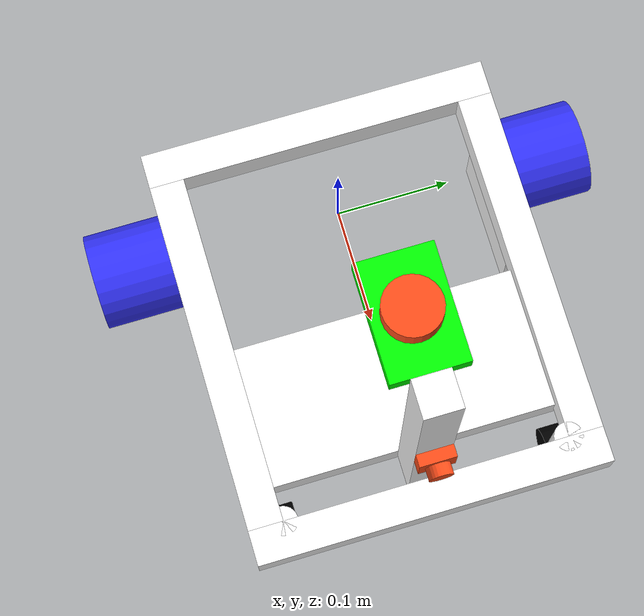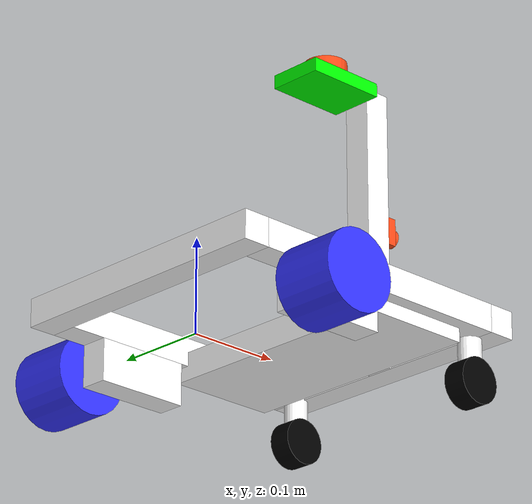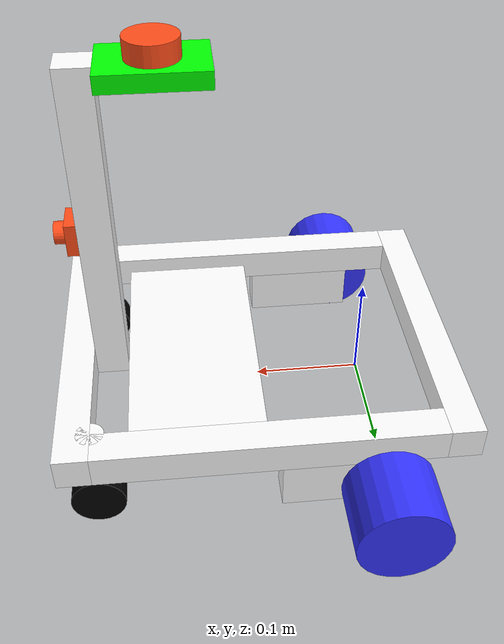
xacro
<?xml version="1.0"?>
<robot xmlns:xacro="http://www.ros.org/wiki/xacro"  name="robot">

<xacro:include filename="robot_core.xacro" />

<xacro:include filename="ros2_control.xacro" />
<xacro:include filename="lidar.xacro" />
<xacro:include filename="camera.xacro" />

</robot>

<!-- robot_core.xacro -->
<robot xmlns:xacro="http://www.ros.org/wiki/xacro"  name="robot">

    <!-- Includes -->
   <xacro:include filename="inertial_macros.xacro" />

    <!-- definition variables -->

    <xacro:property name = "length_chassis" value = "0.365"/>
    <xacro:property name = "width_chassis" value = "0.305"/>
    <xacro:property name = "size_item" value = "0.030"/>
    <xacro:property name = "hight_main_robot" value = "0.1"/>
    <xacro:property name = "diameter_rear_wheel" value = "0.083"/>
    <xacro:property name = "width_rear_wheel" value = "0.0675"/>
    <xacro:property name = "back_to_rear_axel" value = "0.08"/>
    <xacro:property name = "diameter_front_wheel" value = "0.049"/>
    <xacro:property name = "hight_sensor_tower" value = "0.305"/>

    <!-- definition colors -->
    <material name = "white">
        <color rgba = "1 1 1 1" />
    </material>

    <material name = "green">
        <color rgba = "0 1 0 1" />
    </material>

    <material name="orange">
        <color rgba = "1 0.3 0.1 1" />
    </material>

    <material name = "blue">
        <color rgba = "0.2 0.2 1 1" />
    </material>

    <material name = "black">
        <color rgba = "0 0 0 1" />
    </material>

    <!-- Base Link -->

    <link name = "base_link">

    </link>

    <!-- Chassis Link -->

    <joint name = "chassis_joint" type = "fixed">
        <parent link = "base_link"/>
        <child link = "chassis_link"/>
        <origin xyz = "${-back_to_rear_axel} 0 ${hight_main_robot-0.5*diameter_rear_wheel-size_item}"/>
    </joint>

    <link name = "chassis_link">
        <!-- ITEM Hinten -->
        <visual>
            <origin xyz = "${size_item/2} 0 ${size_item/2}"/>
            <geometry>
                <box size = "${size_item} ${width_chassis} ${size_item}"/>
            </geometry>
            <material name = "white"/>
        </visual>
       <xacro:inertial_box mass="0.25" x="${size_item}" y="${width_chassis}" z="${size_item}">
            <origin xyz="${size_item/2} 0 ${size_item/2}"  rpy="0 0 0"/>
        </xacro:inertial_box>

        <!-- ITEM Vorne -->
        <visual>
            <origin xyz = "${length_chassis-size_item/2} 0 ${size_item/2}"/>
            <geometry>
                <box size = "${size_item} ${width_chassis} ${size_item}"/>
            </geometry>
            <material name = "white"/>
        </visual>
        <xacro:inertial_box mass="0.25" x="${size_item}" y="${width_chassis}" z="${size_item}">
            <origin xyz="${length_chassis-size_item/2} 0 ${size_item/2}"  rpy="0 0 0"/>
        </xacro:inertial_box>

        <!-- ITEM Links -->
        <visual>
            <origin xyz = "${length_chassis/2} ${width_chassis/2-size_item/2} ${size_item/2}"/>
            <geometry>
                <box size = "${length_chassis-2*size_item} ${size_item} ${size_item}"/>
            </geometry>
            <material name = "white"/>
        </visual>
        <xacro:inertial_box mass="0.25" x="${length_chassis-2*size_item}" y="${size_item}" z="${size_item}">
            <origin xyz="${length_chassis/2} ${width_chassis/2-size_item/2} ${size_item/2}"  rpy="0 0 0"/>
        </xacro:inertial_box>

        <!-- ITEM Rechts -->
        <visual>
            <origin xyz = "${length_chassis/2} ${-width_chassis/2+size_item/2} ${size_item/2}"/>
            <geometry>
                <box size = "${length_chassis-2*size_item} ${size_item} ${size_item}"/>
            </geometry>
            <material name = "white"/>
        </visual>
        <xacro:inertial_box mass="0.25" x="${length_chassis-2*size_item}" y="${size_item}" z="${size_item}">
            <origin xyz="${length_chassis/2} ${-width_chassis/2+size_item/2} ${size_item/2}"  rpy="0 0 0"/>
        </xacro:inertial_box>

        <!-- Motor und Radhalterung Links -->
        <visual>
            <origin xyz = "${back_to_rear_axel+0.5*diameter_rear_wheel} ${width_chassis/2-size_item/2} ${-0.75*size_item}"/>
            <geometry>
                <box size = "${1.25*diameter_rear_wheel} ${size_item} ${1.5*size_item}"/>
            </geometry>
            <material name = "white"/>
        </visual>
        <xacro:inertial_box mass="0.3" x="${1.25*diameter_rear_wheel}" y="${size_item}" z="${1.5*size_item}">
            <origin xyz="${back_to_rear_axel+0.5*diameter_rear_wheel} ${width_chassis/2-size_item/2} ${-0.75*size_item}"  rpy="0 0 0"/>
        </xacro:inertial_box>

        <!-- Motor und Radhalterung Rechts -->
        <visual>
            <origin xyz = "${back_to_rear_axel+0.5*diameter_rear_wheel} ${-width_chassis/2+size_item/2} ${-0.75*size_item}"/>
            <geometry>
                <box size = "${1.25*diameter_rear_wheel} ${size_item} ${1.5*size_item}"/>
            </geometry>
            <material name = "white"/>
        </visual>
        <xacro:inertial_box mass="0.3" x="${1.25*diameter_rear_wheel}" y="${size_item}" z="${1.5*size_item}">
            <origin xyz="${back_to_rear_axel+0.5*diameter_rear_wheel} ${-width_chassis/2+size_item/2} ${-0.75*size_item}"  rpy="0 0 0"/>
        </xacro:inertial_box>

        <!-- Stuetzradhalterung Links -->
        <visual>
            <origin xyz = "${length_chassis-size_item} ${width_chassis/2-size_item} ${-hight_main_robot/2+diameter_front_wheel/4+size_item}"/>
            <geometry>
                <cylinder radius = "${diameter_front_wheel/4}" length = "${hight_main_robot-diameter_front_wheel/2}"/>
            </geometry>
            <material name = "white"/>
        </visual>
        <xacro:inertial_cylinder mass="0.1" length = "${hight_main_robot-diameter_front_wheel/2}" radius = "${diameter_front_wheel/4}">
            <origin xyz="${length_chassis-size_item} ${width_chassis/2-size_item} ${-hight_main_robot/2+diameter_front_wheel/4+size_item}"  rpy="0 0 0"/>
        </xacro:inertial_cylinder>

        <!-- Stuetzradhalterung Rechts -->
        <visual>
            <origin xyz = "${length_chassis-size_item} ${-width_chassis/2+size_item} ${-hight_main_robot/2+diameter_front_wheel/4+size_item}"/>
            <geometry>
                <cylinder radius = "${diameter_front_wheel/4}" length = "${hight_main_robot-diameter_front_wheel/2}"/>
            </geometry>
            <material name = "white"/>
        </visual>
        <xacro:inertial_cylinder mass="0.1" length = "${hight_main_robot-diameter_front_wheel/2}" radius = "${diameter_front_wheel/4}">
            <origin xyz="${length_chassis-size_item} ${-width_chassis/2+size_item} ${-hight_main_robot/2+diameter_front_wheel/4+size_item}"  rpy="0 0 0"/>
        </xacro:inertial_cylinder>

        <!-- Komponententraeger -->
        <visual>
            <origin xyz = "${length_chassis*2/3} 0 0"/>
            <geometry>
                <box size = "${length_chassis/3} ${width_chassis-1*size_item} ${size_item}"/>
            </geometry>
            <material name = "white"/>
        </visual>
        <xacro:inertial_box mass="0.5" x="${length_chassis/3}" y="${width_chassis-1*size_item}" z="${size_item}">
            <origin xyz="${length_chassis*2/3} 0 0"  rpy="0 0 0"/>
        </xacro:inertial_box>

        <collision>
            <origin xyz = "${length_chassis/2} 0 ${-hight_main_robot/2+size_item+diameter_front_wheel/4}"/>
            <geometry>
                <box size = "${length_chassis} ${width_chassis} ${hight_main_robot-diameter_front_wheel/2}"/>
            </geometry>
        </collision>
    </link>

    <gazebo reference = "chassis_link">
        <material>Gazebo/White</material>
    </gazebo>

    <!-- LEFT WHEEL -->

    <joint name="left_wheel_joint" type="continuous">
        <parent link="base_link"/>
        <child link="left_wheel"/>
        <origin xyz="0 ${width_chassis/2+width_rear_wheel/2} 0" rpy="-${pi/2} 0 0"/>
        <axis xyz="0 0 1"/>
    </joint>

    <link name="left_wheel">
        <visual>
            <geometry>
                <cylinder length="${width_rear_wheel}" radius="${diameter_rear_wheel/2}" />
            </geometry>
            <material name="blue"/>
        </visual>
        <xacro:inertial_cylinder mass="0.15" length="${width_rear_wheel}" radius="${diameter_rear_wheel/2}">
            <origin xyz="0 0 0" rpy="0 0 0"/>
        </xacro:inertial_cylinder>
        <collision>
            <geometry>
                <cylinder length="${width_rear_wheel}" radius="${diameter_rear_wheel/2}" />
            </geometry>
        </collision>
    </link>

    <gazebo reference = "left_wheel">
        <material>Gazebo/Blue</material>
    </gazebo>

    <!-- RIGHT WHEEL -->

    <joint name="right_wheel_joint" type="continuous">
        <parent link="base_link"/>
        <child link="right_wheel"/>
        <origin xyz="0 ${-width_chassis/2-width_rear_wheel/2} 0" rpy="${pi/2} 0 0"/>
        <axis xyz="0 0 -1"/>
    </joint>

    <link name="right_wheel">
        <visual>
            <geometry>
                <cylinder length="${width_rear_wheel}" radius="${diameter_rear_wheel/2}" />
            </geometry>
            <material name="blue"/>
        </visual>
        <xacro:inertial_cylinder mass="0.15" length="${width_rear_wheel}" radius="${diameter_rear_wheel/2}">
            <origin xyz="0 0 0" rpy="0 0 0"/>
        </xacro:inertial_cylinder>
        <collision>
            <geometry>
                <cylinder length="${width_rear_wheel}" radius="${diameter_rear_wheel/2}" />
            </geometry>
        </collision>
    </link>

    <gazebo reference = "right_wheel">
        <material>Gazebo/Blue</material>
    </gazebo>

    <!-- CASTER WHEEL -->

    <joint name="caster_wheel_joint" type="fixed">
        <parent link="chassis_link"/>
        <child link="caster_wheel"/>
        <origin xyz = "${length_chassis-size_item} 0 ${-hight_main_robot+diameter_front_wheel/2+size_item}"/>
    </joint>

    <link name="caster_wheel">
        <visual>
            <origin xyz = "0 ${-width_chassis/2+size_item} 0" rpy="${pi/2} 0 0"/>
            <geometry>
                <cylinder radius="${diameter_front_wheel/2}" length = "${diameter_front_wheel/2}"/>
            </geometry>
            <material name="black"/>
        </visual>
        <xacro:inertial_cylinder mass="0.1" length="${diameter_front_wheel/2}" radius="${diameter_front_wheel/2}">
            <origin xyz = "0 ${-width_chassis/2+size_item} 0" rpy="${pi/2} 0 0"/>
        </xacro:inertial_cylinder>
        <visual>
            <origin xyz = "0 ${width_chassis/2-size_item} 0" rpy="${pi/2} 0 0"/>
            <geometry>
                <cylinder radius="${diameter_front_wheel/2}" length = "${diameter_front_wheel/2}"/>
            </geometry>
            <material name="black"/>
        </visual>
        <xacro:inertial_cylinder mass="0.15" length="${diameter_front_wheel/2}" radius="${diameter_front_wheel/2}">
            <origin xyz = "0 ${width_chassis/2-size_item} 0" rpy="${pi/2} 0 0"/>
        </xacro:inertial_cylinder>
        <collision>
            <origin xyz = "0 ${-width_chassis/2+size_item} 0" rpy="${pi/2} 0 0"/>
            <geometry>
                <cylinder radius="${diameter_front_wheel/2}" length = "${diameter_front_wheel/2}"/>
            </geometry>
        </collision>
        <collision>
            <origin xyz = "0 ${width_chassis/2-size_item} 0" rpy="${pi/2} 0 0"/>
            <geometry>
                <cylinder radius="${diameter_front_wheel/2}" length = "${diameter_front_wheel/2}"/>
            </geometry>
        </collision>
    </link>

    <gazebo reference = "caster_wheel">
        <material>Gazebo/Black</material>
        <mu1 value="0.0001"/>
        <mu2 value="0.0001"/>
    </gazebo>

    <!-- Sensor Tower Link -->

    <joint name = "sensor_tower_joint" type = "fixed">
        <parent link = "chassis_link"/>
        <child link = "sensor_tower_link"/>
        <origin xyz = "${length_chassis-1.5*size_item} 0 ${hight_sensor_tower/2}"/>
    </joint>

    <link name = "sensor_tower_link">
        <visual>
            <geometry>
                <box size = "${size_item} ${size_item} ${hight_sensor_tower}"/>
            </geometry>
            <material name = "white"/>
        </visual>
       <xacro:inertial_box mass="0.25" x="${size_item}" y="${size_item}" z="${hight_sensor_tower}">
            <origin xyz= "0 0 0"  rpy="0 0 0"/>
        </xacro:inertial_box>

        <collision>
            <geometry>
                <box size = "${size_item} ${size_item} ${hight_sensor_tower}"/>
            </geometry>
        </collision>
    </link>

    <gazebo reference = "sensor_tower_link">
        <material>Gazebo/White</material>
    </gazebo>
</robot>

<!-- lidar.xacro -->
<robot xmlns:xacro="http://www.ros.org/wiki/xacro"  name="robot">

    <!-- Includes -->
   <xacro:include filename="inertial_macros.xacro" />

        <!-- Lidar Link -->
    <joint name = "laser_joint" type = "fixed">
        <parent link = "sensor_tower_link"/>
        <child link = "laser_link"/>
        <origin xyz = "${-2*size_item} 0 ${hight_sensor_tower/2}"/>
    </joint>

    <link name = "laser_link">
        <visual>
            <origin xyz = "0 0 ${-size_item/4}"/>
            <geometry>
                <box size = "${size_item*3} ${size_item*2} ${size_item/2}"/>
            </geometry>
            <material name = "green"/>
        </visual>
       <xacro:inertial_box mass="0.1" x="${size_item*3}" y="${size_item*2}" z="${size_item*7/6}">
            <origin xyz= "0 0 ${-size_item/12}"  rpy="0 0 0"/>
        </xacro:inertial_box>
        <visual>
            <origin xyz = "0 0 ${size_item/4}" rpy="0 0 0"/>
            <geometry>
                <cylinder radius="${size_item*0.75}" length = "${size_item*2/3}"/>
            </geometry>
            <material name = "orange"/>
        </visual>

        <collision>
            <origin xyz= "0 0 ${-size_item/12}"  rpy="0 0 0"/>
            <geometry>
                <box size = "${size_item*3} ${size_item*2} ${size_item*7/6}"/>
            </geometry>
        </collision>
    </link>

    <gazebo reference = "laser_link">
        <material>Gazebo/Green</material>
        <sensor name="laser" type="ray">
            <pose> 0 0 0 0 0 0 </pose>
            <visualize>false</visualize>
            <update_rate>10</update_rate>
            <ray>
                <scan>
                    <horizontal>
                        <samples>360</samples>
                        <min_angle>-3.14</min_angle>
                        <max_angle>3.14</max_angle>
                    </horizontal>
                </scan>
                <range>
                    <min>0.3</min>
                    <max>12</max>
                </range>
            </ray>
            <plugin name="laser_controller" filename="libgazebo_ros_ray_sensor.so">
                <ros>
                    <argument>~/out:=scan</argument>
                </ros>
                <output_type>sensor_msgs/LaserScan
                </output_type>
                <frame_name>laser_frame</frame_name>
            </plugin>
        </sensor>
    </gazebo>

</robot>

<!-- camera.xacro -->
<robot xmlns:xacro="http://www.ros.org/wiki/xacro">

    <!-- Includes -->
   <xacro:include filename="inertial_macros.xacro" />

  <!-- Camera Link -->
    <joint name = "camera_joint" type = "fixed">
        <parent link = "sensor_tower_link"/>
        <child link = "camera_link"/>
        <origin xyz = "${size_item*7/6} 0 0"/>
    </joint>

    <link name = "camera_link">
        <visual>
            <origin xyz = "${-3*size_item/6} 0 0"/>
            <geometry>
                <box size = "${size_item/3} ${size_item} ${size_item}"/>
            </geometry>
            <material name = "orange"/>
        </visual>
       <xacro:inertial_box mass="0.025" x="${size_item*2/3}" y="${size_item}" z="${size_item}">
            <origin xyz= "${-size_item/3} 0 0"  rpy="0 0 0"/>
        </xacro:inertial_box>
        <visual>
            <origin xyz = "${-size_item/6} 0 0" rpy="0 ${pi/2} 0"/>
            <geometry>
                <cylinder radius="${size_item/3}" length = "${size_item/3}"/>
            </geometry>
            <material name = "orange"/>
        </visual>

        <collision>
            <geometry>
                <box size = "${size_item*2/3} ${size_item} ${size_item}"/>
            </geometry>
        </collision>
    </link>

    <joint name = "camera_optical_joint" type = "fixed">
        <parent link = "camera_link"/>
        <child link = "camera_optical_link"/>
        <origin xyz = "0 0 0" rpy = "${-pi/2} 0 ${-pi/2}"/>
    </joint>

     <link name = "camera_optical_link"> </link>

    <gazebo reference = "camera_link">
        <material>Gazebo/Orange</material>
        <sensor name="camera" type="camera">
            <pose> 0 0 0 0 0 0 </pose>
            <visualize>true</visualize>
            <update_rate>10</update_rate>
            <camera>
                <horizontal_fov>1.089</horizontal_fov>
                <image>
                    <format>R8G8B8</format>
                    <width>640</width>
                    <height>480</height>
                </image>
                <clip>
                    <near>0.05</near>
                    <far>8.0</far>
                </clip>
            </camera>
            <plugin name="camera_controller" filename="libgazebo_ros_camera.so">
                <frame_name>camera_optical_link</frame_name>
            </plugin>
        </sensor>
    </gazebo>

</robot>
